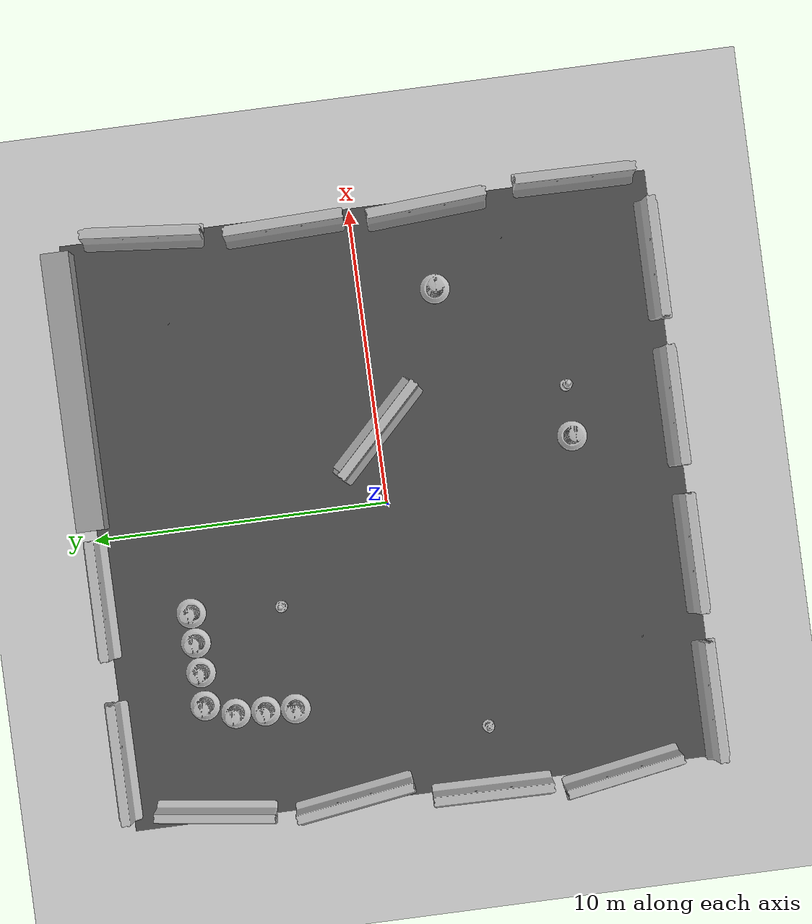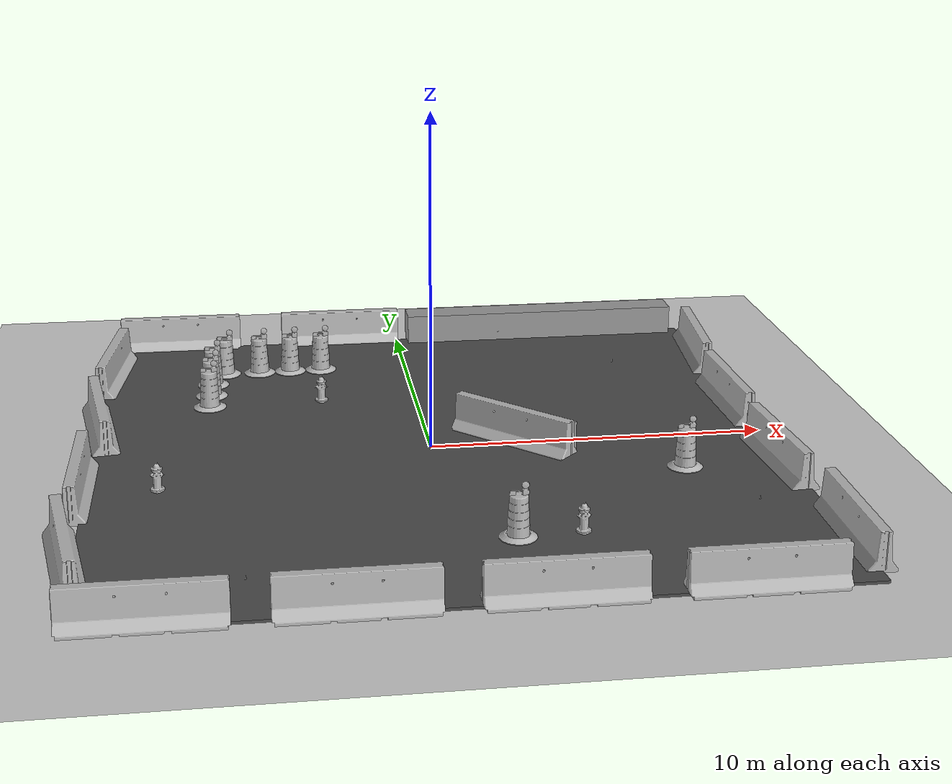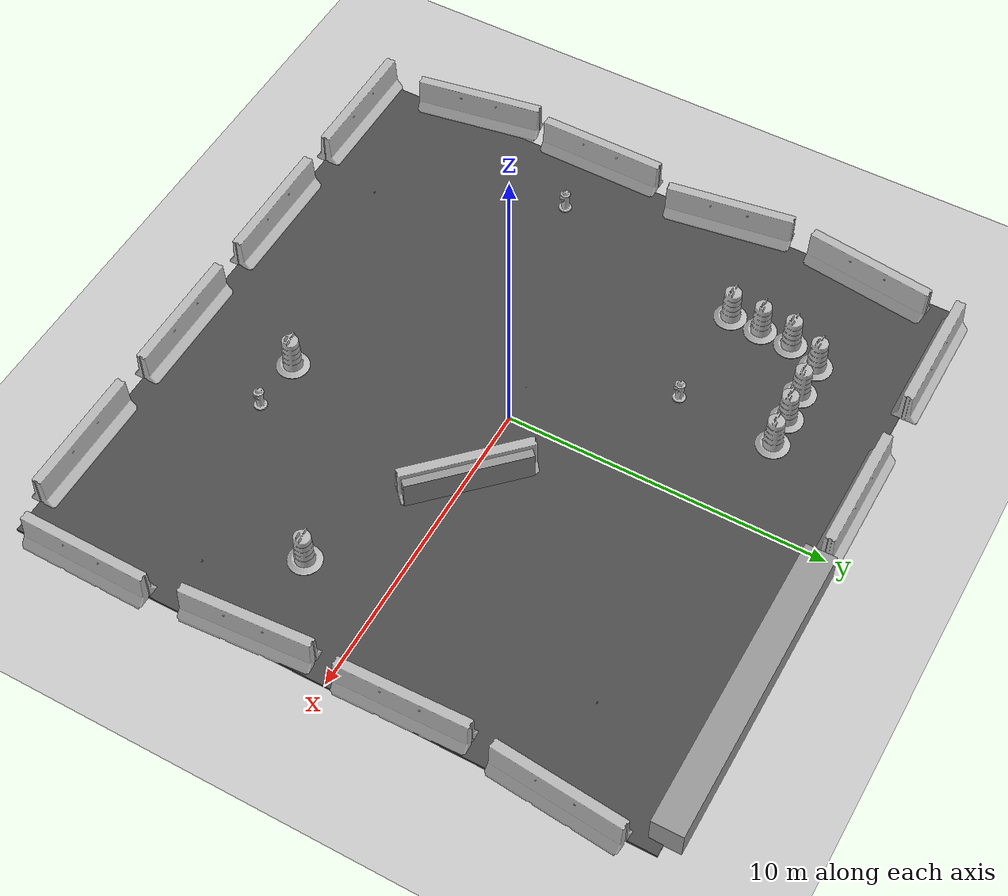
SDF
<sdf version="1.6">
 <world name="default">
  <light name="sun" type="directional">
   <pose>0 0 10 0 -0 0</pose>
   <diffuse>0.8 0.8 0.8 1</diffuse>
   <specular>0.2 0.2 0.2 1</specular>
   <attenuation>
    <range>1000</range>
    <constant>0.9</constant>
    <linear>0.01</linear>
    <quadratic>0.001</quadratic>
   </attenuation>
   <direction>-0.5 0.1 -0.9</direction>
  </light>
  <model name="ground_plane">
   <static>1</static>
   <link name="link">
    <collision name="collision">
     <geometry><plane><normal>0 0 1</normal><size>100 100</size></plane></geometry>
     <surface><friction><ode><mu>100</mu><mu2>50</mu2></ode></friction></surface>
    </collision>
    <visual name="visual">
     <cast_shadows>0</cast_shadows>
     <geometry><plane><normal>0 0 1</normal><size>100 100</size></plane></geometry>
     <material>
      <script><uri>file://media/materials/scripts/gazebo.material</uri><name>Gazebo/Grey</name></script>
     </material>
    </visual>
    <velocity_decay><linear>0</linear><angular>0</angular></velocity_decay>
   </link>
  </model>
  <physics name="default_physics" default="0" type="ode">
   <max_step_size>0.01</max_step_size>
   <real_time_factor>1</real_time_factor>
   <real_time_update_rate>100</real_time_update_rate>
  </physics>
  <scene><ambient>0.4 0.4 0.4 1</ambient><background>0.7 0.7 0.7 1</background><shadows>1</shadows></scene>
  <model name="jersey_barrier">
   <static>1</static>
   <link name="link">
    <visual name="visual">
     <geometry>
      <mesh><uri>model://jersey_barrier/meshes/jersey_barrier.dae</uri><scale>1 1 1</scale></mesh>
     </geometry>
    </visual>
    <collision name="upright">
     <pose>0 0 0.5715 0 -0 0</pose>
     <geometry><box><size>4.06542 0.3063 1.143</size></box></geometry>
    </collision>
    <collision name="base">
     <pose>0 0 0.032258 0 -0 0</pose>
     <geometry><box><size>4.06542 0.8107 0.064516</size></box></geometry>
    </collision>
    <collision name="base2">
     <pose>0 0 0.1 0 -0 0</pose>
     <geometry><box><size>4.06542 0.65 0.1</size></box></geometry>
    </collision>
    <collision name="base3">
     <pose>0 0 0.2 0 -0 0</pose>
     <geometry><box><size>4.06542 0.5 0.1</size></box></geometry>
    </collision>
    <collision name="left-angle">
     <pose>0 -0.224 0.2401 0.9 -0 0</pose>
     <geometry><box><size>4.06542 0.5 0.064516</size></box></geometry>
    </collision>
    <collision name="right-angle">
     <pose>0 0.224 0.2401 -0.9 0 0</pose>
     <geometry><box><size>4.06542 0.5 0.064516</size></box></geometry>
    </collision>
    <velocity_decay><linear>0</linear><angular>0</angular></velocity_decay>
   </link>
   <pose>-8 -10 0 0 -0 0</pose>
  </model>
  <model name="jersey_barrier_0">
   <static>1</static>
   <link name="link">
    <visual name="visual">
     <geometry>
      <mesh><uri>model://jersey_barrier/meshes/jersey_barrier.dae</uri><scale>1 1 1</scale></mesh>
     </geometry>
    </visual>
    <collision name="upright">
     <pose>0 0 0.5715 0 -0 0</pose>
     <geometry><box><size>4.06542 0.3063 1.143</size></box></geometry>
    </collision>
    <collision name="base">
     <pose>0 0 0.032258 0 -0 0</pose>
     <geometry><box><size>4.06542 0.8107 0.064516</size></box></geometry>
    </collision>
    <collision name="base2">
     <pose>0 0 0.1 0 -0 0</pose>
     <geometry><box><size>4.06542 0.65 0.1</size></box></geometry>
    </collision>
    <collision name="base3">
     <pose>0 0 0.2 0 -0 0</pose>
     <geometry><box><size>4.06542 0.5 0.1</size></box></geometry>
    </collision>
    <collision name="left-angle">
     <pose>0 -0.224 0.2401 0.9 -0 0</pose>
     <geometry><box><size>4.06542 0.5 0.064516</size></box></geometry>
    </collision>
    <collision name="right-angle">
     <pose>0 0.224 0.2401 -0.9 0 0</pose>
     <geometry><box><size>4.06542 0.5 0.064516</size></box></geometry>
    </collision>
    <velocity_decay><linear>0</linear><angular>0</angular></velocity_decay>
   </link>
   <pose>-3 -10 0 0 -0 0</pose>
  </model>
  <model name="jersey_barrier_1">
   <static>1</static>
   <link name="link">
    <visual name="visual">
     <geometry>
      <mesh><uri>model://jersey_barrier/meshes/jersey_barrier.dae</uri><scale>1 1 1</scale></mesh>
     </geometry>
    </visual>
    <collision name="upright">
     <pose>0 0 0.5715 0 -0 0</pose>
     <geometry><box><size>4.06542 0.3063 1.143</size></box></geometry>
    </collision>
    <collision name="base">
     <pose>0 0 0.032258 0 -0 0</pose>
     <geometry><box><size>4.06542 0.8107 0.064516</size></box></geometry>
    </collision>
    <collision name="base2">
     <pose>0 0 0.1 0 -0 0</pose>
     <geometry><box><size>4.06542 0.65 0.1</size></box></geometry>
    </collision>
    <collision name="base3">
     <pose>0 0 0.2 0 -0 0</pose>
     <geometry><box><size>4.06542 0.5 0.1</size></box></geometry>
    </collision>
    <collision name="left-angle">
     <pose>0 -0.224 0.2401 0.9 -0 0</pose>
     <geometry><box><size>4.06542 0.5 0.064516</size></box></geometry>
    </collision>
    <collision name="right-angle">
     <pose>0 0.224 0.2401 -0.9 0 0</pose>
     <geometry><box><size>4.06542 0.5 0.064516</size></box></geometry>
    </collision>
    <velocity_decay><linear>0</linear><angular>0</angular></velocity_decay>
   </link>
   <pose>2 -10 0 0 -0 0</pose>
  </model>
  <model name="jersey_barrier_2">
   <static>1</static>
   <link name="link">
    <visual name="visual">
     <geometry>
      <mesh><uri>model://jersey_barrier/meshes/jersey_barrier.dae</uri><scale>1 1 1</scale></mesh>
     </geometry>
    </visual>
    <collision name="upright">
     <pose>0 0 0.5715 0 -0 0</pose>
     <geometry><box><size>4.06542 0.3063 1.143</size></box></geometry>
    </collision>
    <collision name="base">
     <pose>0 0 0.032258 0 -0 0</pose>
     <geometry><box><size>4.06542 0.8107 0.064516</size></box></geometry>
    </collision>
    <collision name="base2">
     <pose>0 0 0.1 0 -0 0</pose>
     <geometry><box><size>4.06542 0.65 0.1</size></box></geometry>
    </collision>
    <collision name="base3">
     <pose>0 0 0.2 0 -0 0</pose>
     <geometry><box><size>4.06542 0.5 0.1</size></box></geometry>
    </collision>
    <collision name="left-angle">
     <pose>0 -0.224 0.2401 0.9 -0 0</pose>
     <geometry><box><size>4.06542 0.5 0.064516</size></box></geometry>
    </collision>
    <collision name="right-angle">
     <pose>0 0.224 0.2401 -0.9 0 0</pose>
     <geometry><box><size>4.06542 0.5 0.064516</size></box></geometry>
    </collision>
    <velocity_decay><linear>0</linear><angular>0</angular></velocity_decay>
   </link>
   <pose>7 -10 0 0 -0 0</pose>
  </model>
  <model name="jersey_barrier_3">
   <static>1</static>
   <link name="link">
    <visual name="visual">
     <geometry>
      <mesh><uri>model://jersey_barrier/meshes/jersey_barrier.dae</uri><scale>1 1 1</scale></mesh>
     </geometry>
    </visual>
    <collision name="upright">
     <pose>0 0 0.5715 0 -0 0</pose>
     <geometry><box><size>4.06542 0.3063 1.143</size></box></geometry>
    </collision>
    <collision name="base">
     <pose>0 0 0.032258 0 -0 0</pose>
     <geometry><box><size>4.06542 0.8107 0.064516</size></box></geometry>
    </collision>
    <collision name="base2">
     <pose>0 0 0.1 0 -0 0</pose>
     <geometry><box><size>4.06542 0.65 0.1</size></box></geometry>
    </collision>
    <collision name="base3">
     <pose>0 0 0.2 0 -0 0</pose>
     <geometry><box><size>4.06542 0.5 0.1</size></box></geometry>
    </collision>
    <collision name="left-angle">
     <pose>0 -0.224 0.2401 0.9 -0 0</pose>
     <geometry><box><size>4.06542 0.5 0.064516</size></box></geometry>
    </collision>
    <collision name="right-angle">
     <pose>0 0.224 0.2401 -0.9 0 0</pose>
     <geometry><box><size>4.06542 0.5 0.064516</size></box></geometry>
    </collision>
    <velocity_decay><linear>0</linear><angular>0</angular></velocity_decay>
   </link>
   <pose>-7.50675 10 0 0 -0 0</pose>
  </model>
  <model name="jersey_barrier_4">
   <static>1</static>
   <link name="link">
    <visual name="visual">
     <geometry>
      <mesh><uri>model://jersey_barrier/meshes/jersey_barrier.dae</uri><scale>1 1 1</scale></mesh>
     </geometry>
    </visual>
    <collision name="upright">
     <pose>0 0 0.5715 0 -0 0</pose>
     <geometry><box><size>4.06542 0.3063 1.143</size></box></geometry>
    </collision>
    <collision name="base">
     <pose>0 0 0.032258 0 -0 0</pose>
     <geometry><box><size>4.06542 0.8107 0.064516</size></box></geometry>
    </collision>
    <collision name="base2">
     <pose>0 0 0.1 0 -0 0</pose>
     <geometry><box><size>4.06542 0.65 0.1</size></box></geometry>
    </collision>
    <collision name="base3">
     <pose>0 0 0.2 0 -0 0</pose>
     <geometry><box><size>4.06542 0.5 0.1</size></box></geometry>
    </collision>
    <collision name="left-angle">
     <pose>0 -0.224 0.2401 0.9 -0 0</pose>
     <geometry><box><size>4.06542 0.5 0.064516</size></box></geometry>
    </collision>
    <collision name="right-angle">
     <pose>0 0.224 0.2401 -0.9 0 0</pose>
     <geometry><box><size>4.06542 0.5 0.064516</size></box></geometry>
    </collision>
    <velocity_decay><linear>0</linear><angular>0</angular></velocity_decay>
   </link>
   <pose>-2 10 0 0 -0 0</pose>
  </model>
  <model name="jersey_barrier_7">
   <static>1</static>
   <link name="link">
    <visual name="visual">
     <geometry>
      <mesh><uri>model://jersey_barrier/meshes/jersey_barrier.dae</uri><scale>1 1 1</scale></mesh>
     </geometry>
    </visual>
    <collision name="upright">
     <pose>0 0 0.5715 0 -0 0</pose>
     <geometry><box><size>4.06542 0.3063 1.143</size></box></geometry>
    </collision>
    <collision name="base">
     <pose>0 0 0.032258 0 -0 0</pose>
     <geometry><box><size>4.06542 0.8107 0.064516</size></box></geometry>
    </collision>
    <collision name="base2">
     <pose>0 0 0.1 0 -0 0</pose>
     <geometry><box><size>4.06542 0.65 0.1</size></box></geometry>
    </collision>
    <collision name="base3">
     <pose>0 0 0.2 0 -0 0</pose>
     <geometry><box><size>4.06542 0.5 0.1</size></box></geometry>
    </collision>
    <collision name="left-angle">
     <pose>0 -0.224 0.2401 0.9 -0 0</pose>
     <geometry><box><size>4.06542 0.5 0.064516</size></box></geometry>
    </collision>
    <collision name="right-angle">
     <pose>0 0.224 0.2401 -0.9 0 0</pose>
     <geometry><box><size>4.06542 0.5 0.064516</size></box></geometry>
    </collision>
    <velocity_decay><linear>0</linear><angular>0</angular></velocity_decay>
   </link>
   <pose>9.74902 -2.57759 0 0 -0 1.64</pose>
  </model>
  <model name="jersey_barrier_8">
   <static>1</static>
   <link name="link">
    <visual name="visual">
     <geometry>
      <mesh><uri>model://jersey_barrier/meshes/jersey_barrier.dae</uri><scale>1 1 1</scale></mesh>
     </geometry>
    </visual>
    <collision name="upright">
     <pose>0 0 0.5715 0 -0 0</pose>
     <geometry><box><size>4.06542 0.3063 1.143</size></box></geometry>
    </collision>
    <collision name="base">
     <pose>0 0 0.032258 0 -0 0</pose>
     <geometry><box><size>4.06542 0.8107 0.064516</size></box></geometry>
    </collision>
    <collision name="base2">
     <pose>0 0 0.1 0 -0 0</pose>
     <geometry><box><size>4.06542 0.65 0.1</size></box></geometry>
    </collision>
    <collision name="base3">
     <pose>0 0 0.2 0 -0 0</pose>
     <geometry><box><size>4.06542 0.5 0.1</size></box></geometry>
    </collision>
    <collision name="left-angle">
     <pose>0 -0.224 0.2401 0.9 -0 0</pose>
     <geometry><box><size>4.06542 0.5 0.064516</size></box></geometry>
    </collision>
    <collision name="right-angle">
     <pose>0 0.224 0.2401 -0.9 0 0</pose>
     <geometry><box><size>4.06542 0.5 0.064516</size></box></geometry>
    </collision>
    <velocity_decay><linear>0</linear><angular>0</angular></velocity_decay>
   </link>
   <pose>9.70141 2.24369 0 0 -0 1.6</pose>
  </model>
  <model name="jersey_barrier_9">
   <static>1</static>
   <link name="link">
    <visual name="visual">
     <geometry>
      <mesh><uri>model://jersey_barrier/meshes/jersey_barrier.dae</uri><scale>1 1 1</scale></mesh>
     </geometry>
    </visual>
    <collision name="upright">
     <pose>0 0 0.5715 0 -0 0</pose>
     <geometry><box><size>4.06542 0.3063 1.143</size></box></geometry>
    </collision>
    <collision name="base">
     <pose>0 0 0.032258 0 -0 0</pose>
     <geometry><box><size>4.06542 0.8107 0.064516</size></box></geometry>
    </collision>
    <collision name="base2">
     <pose>0 0 0.1 0 -0 0</pose>
     <geometry><box><size>4.06542 0.65 0.1</size></box></geometry>
    </collision>
    <collision name="base3">
     <pose>0 0 0.2 0 -0 0</pose>
     <geometry><box><size>4.06542 0.5 0.1</size></box></geometry>
    </collision>
    <collision name="left-angle">
     <pose>0 -0.224 0.2401 0.9 -0 0</pose>
     <geometry><box><size>4.06542 0.5 0.064516</size></box></geometry>
    </collision>
    <collision name="right-angle">
     <pose>0 0.224 0.2401 -0.9 0 0</pose>
     <geometry><box><size>4.06542 0.5 0.064516</size></box></geometry>
    </collision>
    <velocity_decay><linear>0</linear><angular>0</angular></velocity_decay>
   </link>
   <pose>-10.0607 -6.69856 0 0 0 -1.4</pose>
  </model>
  <model name="jersey_barrier_10">
   <static>1</static>
   <link name="link">
    <visual name="visual">
     <geometry>
      <mesh><uri>model://jersey_barrier/meshes/jersey_barrier.dae</uri><scale>1 1 1</scale></mesh>
     </geometry>
    </visual>
    <collision name="upright">
     <pose>0 0 0.5715 0 -0 0</pose>
     <geometry><box><size>4.06542 0.3063 1.143</size></box></geometry>
    </collision>
    <collision name="base">
     <pose>0 0 0.032258 0 -0 0</pose>
     <geometry><box><size>4.06542 0.8107 0.064516</size></box></geometry>
    </collision>
    <collision name="base2">
     <pose>0 0 0.1 0 -0 0</pose>
     <geometry><box><size>4.06542 0.65 0.1</size></box></geometry>
    </collision>
    <collision name="base3">
     <pose>0 0 0.2 0 -0 0</pose>
     <geometry><box><size>4.06542 0.5 0.1</size></box></geometry>
    </collision>
    <collision name="left-angle">
     <pose>0 -0.224 0.2401 0.9 -0 0</pose>
     <geometry><box><size>4.06542 0.5 0.064516</size></box></geometry>
    </collision>
    <collision name="right-angle">
     <pose>0 0.224 0.2401 -0.9 0 0</pose>
     <geometry><box><size>4.06542 0.5 0.064516</size></box></geometry>
    </collision>
    <velocity_decay><linear>0</linear><angular>0</angular></velocity_decay>
   </link>
   <pose>-10.0774 -2.27159 0 0 -0 1.56</pose>
  </model>
  <model name="jersey_barrier_11">
   <static>1</static>
   <link name="link">
    <visual name="visual">
     <geometry>
      <mesh><uri>model://jersey_barrier/meshes/jersey_barrier.dae</uri><scale>1 1 1</scale></mesh>
     </geometry>
    </visual>
    <collision name="upright">
     <pose>0 0 0.5715 0 -0 0</pose>
     <geometry><box><size>4.06542 0.3063 1.143</size></box></geometry>
    </collision>
    <collision name="base">
     <pose>0 0 0.032258 0 -0 0</pose>
     <geometry><box><size>4.06542 0.8107 0.064516</size></box></geometry>
    </collision>
    <collision name="base2">
     <pose>0 0 0.1 0 -0 0</pose>
     <geometry><box><size>4.06542 0.65 0.1</size></box></geometry>
    </collision>
    <collision name="base3">
     <pose>0 0 0.2 0 -0 0</pose>
     <geometry><box><size>4.06542 0.5 0.1</size></box></geometry>
    </collision>
    <collision name="left-angle">
     <pose>0 -0.224 0.2401 0.9 -0 0</pose>
     <geometry><box><size>4.06542 0.5 0.064516</size></box></geometry>
    </collision>
    <collision name="right-angle">
     <pose>0 0.224 0.2401 -0.9 0 0</pose>
     <geometry><box><size>4.06542 0.5 0.064516</size></box></geometry>
    </collision>
    <velocity_decay><linear>0</linear><angular>0</angular></velocity_decay>
   </link>
   <pose>-9.77013 2.34791 0 0 -0 1.72</pose>
  </model>
  <model name="jersey_barrier_12">
   <static>1</static>
   <link name="link">
    <visual name="visual">
     <geometry>
      <mesh><uri>model://jersey_barrier/meshes/jersey_barrier.dae</uri><scale>1 1 1</scale></mesh>
     </geometry>
    </visual>
    <collision name="upright">
     <pose>0 0 0.5715 0 -0 0</pose>
     <geometry><box><size>4.06542 0.3063 1.143</size></box></geometry>
    </collision>
    <collision name="base">
     <pose>0 0 0.032258 0 -0 0</pose>
     <geometry><box><size>4.06542 0.8107 0.064516</size></box></geometry>
    </collision>
    <collision name="base2">
     <pose>0 0 0.1 0 -0 0</pose>
     <geometry><box><size>4.06542 0.65 0.1</size></box></geometry>
    </collision>
    <collision name="base3">
     <pose>0 0 0.2 0 -0 0</pose>
     <geometry><box><size>4.06542 0.5 0.1</size></box></geometry>
    </collision>
    <collision name="left-angle">
     <pose>0 -0.224 0.2401 0.9 -0 0</pose>
     <geometry><box><size>4.06542 0.5 0.064516</size></box></geometry>
    </collision>
    <collision name="right-angle">
     <pose>0 0.224 0.2401 -0.9 0 0</pose>
     <geometry><box><size>4.06542 0.5 0.064516</size></box></geometry>
    </collision>
    <velocity_decay><linear>0</linear><angular>0</angular></velocity_decay>
   </link>
   <pose>10.0879 -7.62159 0 0 -0 1.56</pose>
  </model>
  <model name="jersey_barrier_13">
   <static>1</static>
   <link name="link">
    <visual name="visual">
     <geometry>
      <mesh><uri>model://jersey_barrier/meshes/jersey_barrier.dae</uri><scale>1 1 1</scale></mesh>
     </geometry>
    </visual>
    <collision name="upright">
     <pose>0 0 0.5715 0 -0 0</pose>
     <geometry><box><size>4.06542 0.3063 1.143</size></box></geometry>
    </collision>
    <collision name="base">
     <pose>0 0 0.032258 0 -0 0</pose>
     <geometry><box><size>4.06542 0.8107 0.064516</size></box></geometry>
    </collision>
    <collision name="base2">
     <pose>0 0 0.1 0 -0 0</pose>
     <geometry><box><size>4.06542 0.65 0.1</size></box></geometry>
    </collision>
    <collision name="base3">
     <pose>0 0 0.2 0 -0 0</pose>
     <geometry><box><size>4.06542 0.5 0.1</size></box></geometry>
    </collision>
    <collision name="left-angle">
     <pose>0 -0.224 0.2401 0.9 -0 0</pose>
     <geometry><box><size>4.06542 0.5 0.064516</size></box></geometry>
    </collision>
    <collision name="right-angle">
     <pose>0 0.224 0.2401 -0.9 0 0</pose>
     <geometry><box><size>4.06542 0.5 0.064516</size></box></geometry>
    </collision>
    <velocity_decay><linear>0</linear><angular>0</angular></velocity_decay>
   </link>
   <pose>10 7 0 0 -0 1.48</pose>
  </model>
  <model name="jersey_barrier_14">
   <static>1</static>
   <link name="link">
    <visual name="visual">
     <geometry>
      <mesh><uri>model://jersey_barrier/meshes/jersey_barrier.dae</uri><scale>1 1 1</scale></mesh>
     </geometry>
    </visual>
    <collision name="upright">
     <pose>0 0 0.5715 0 -0 0</pose>
     <geometry><box><size>4.06542 0.3063 1.143</size></box></geometry>
    </collision>
    <collision name="base">
     <pose>0 0 0.032258 0 -0 0</pose>
     <geometry><box><size>4.06542 0.8107 0.064516</size></box></geometry>
    </collision>
    <collision name="base2">
     <pose>0 0 0.1 0 -0 0</pose>
     <geometry><box><size>4.06542 0.65 0.1</size></box></geometry>
    </collision>
    <collision name="base3">
     <pose>0 0 0.2 0 -0 0</pose>
     <geometry><box><size>4.06542 0.5 0.1</size></box></geometry>
    </collision>
    <collision name="left-angle">
     <pose>0 -0.224 0.2401 0.9 -0 0</pose>
     <geometry><box><size>4.06542 0.5 0.064516</size></box></geometry>
    </collision>
    <collision name="right-angle">
     <pose>0 0.224 0.2401 -0.9 0 0</pose>
     <geometry><box><size>4.06542 0.5 0.064516</size></box></geometry>
    </collision>
    <velocity_decay><linear>0</linear><angular>0</angular></velocity_decay>
   </link>
   <pose>-9.64482 7.05946 0 0 -0 1.44</pose>
  </model>
  <model name="fire_hydrant">
   <static>1</static>
   <link name="link">
    <collision name="collision">
     <geometry><mesh><uri>model://fire_hydrant/meshes/fire_hydrant.dae</uri><scale>1 1 1</scale></mesh></geometry>
    </collision>
    <visual name="visual">
     <geometry><mesh><uri>model://fire_hydrant/meshes/fire_hydrant.dae</uri><scale>1 1 1</scale></mesh></geometry>
    </visual>
    <velocity_decay><linear>0</linear><angular>0</angular></velocity_decay>
   </link>
   <pose>3.18024 -6.51118 0 0 -0 0</pose>
  </model>
  <model name="fire_hydrant_0">
   <static>1</static>
   <link name="link">
    <collision name="collision">
     <geometry><mesh><uri>model://fire_hydrant/meshes/fire_hydrant.dae</uri><scale>1 1 1</scale></mesh></geometry>
    </collision>
    <visual name="visual">
     <geometry><mesh><uri>model://fire_hydrant/meshes/fire_hydrant.dae</uri><scale>1 1 1</scale></mesh></geometry>
    </visual>
    <velocity_decay><linear>0</linear><angular>0</angular></velocity_decay>
   </link>
   <pose>-3 4 0 0 -0 0</pose>
  </model>
  <model name="fire_hydrant_1">
   <static>1</static>
   <link name="link">
    <collision name="collision">
     <geometry><mesh><uri>model://fire_hydrant/meshes/fire_hydrant.dae</uri><scale>1 1 1</scale></mesh></geometry>
    </collision>
    <visual name="visual">
     <geometry><mesh><uri>model://fire_hydrant/meshes/fire_hydrant.dae</uri><scale>1 1 1</scale></mesh></geometry>
    </visual>
    <velocity_decay><linear>0</linear><angular>0</angular></velocity_decay>
   </link>
   <pose>-7.90686 -2.41363 0 0 -0 0</pose>
  </model>
  <model name="jersey_barrier_15">
   <static>1</static>
   <link name="link">
    <visual name="visual">
     <geometry>
      <mesh><uri>model://jersey_barrier/meshes/jersey_barrier.dae</uri><scale>1 1 1</scale></mesh>
     </geometry>
    </visual>
    <collision name="upright">
     <pose>0 0 0.5715 0 -0 0</pose>
     <geometry><box><size>4.06542 0.3063 1.143</size></box></geometry>
    </collision>
    <collision name="base">
     <pose>0 0 0.032258 0 -0 0</pose>
     <geometry><box><size>4.06542 0.8107 0.064516</size></box></geometry>
    </collision>
    <collision name="base2">
     <pose>0 0 0.1 0 -0 0</pose>
     <geometry><box><size>4.06542 0.65 0.1</size></box></geometry>
    </collision>
    <collision name="base3">
     <pose>0 0 0.2 0 -0 0</pose>
     <geometry><box><size>4.06542 0.5 0.1</size></box></geometry>
    </collision>
    <collision name="left-angle">
     <pose>0 -0.224 0.2401 0.9 -0 0</pose>
     <geometry><box><size>4.06542 0.5 0.064516</size></box></geometry>
    </collision>
    <collision name="right-angle">
     <pose>0 0.224 0.2401 -0.9 0 0</pose>
     <geometry><box><size>4.06542 0.5 0.064516</size></box></geometry>
    </collision>
    <velocity_decay><linear>0</linear><angular>0</angular></velocity_decay>
   </link>
   <pose>2.45495 0 0 0 -0 2.36</pose>
  </model>
  <model name="Construction Cone">
   <link name="link">
    <collision name="collision">
     <geometry>
      <mesh><scale>1 1 1</scale><uri>model://construction_cone/meshes/construction_cone.dae</uri></mesh>
     </geometry>
    </collision>
    <visual name="visual">
     <geometry>
      <mesh><scale>1 1 1</scale><uri>model://construction_cone/meshes/construction_cone.dae</uri></mesh>
     </geometry>
    </visual>
    <velocity_decay><linear>0</linear><angular>0</angular></velocity_decay>
    <inertial>
     <inertia><ixx>1</ixx><ixy>0</ixy><ixz>0</ixz><iyy>1</iyy><iyz>0</iyz><izz>1</izz></inertia>
     <mass>1</mass>
    </inertial>
   </link>
   <pose>-5.59121 -8 0.049102 3e-06 -1e-05 2e-06</pose>
   <static>0</static>
  </model>
  <model name="Construction Barrel">
   <link name="link">
    <inertial>
     <pose>0 0 0.4 0 -0 0</pose>
     <mass>500</mass>
     <inertia><ixx>51.2096</ixx><iyy>51.2096</iyy><izz>25</izz><ixy>0</ixy><ixz>0</ixz><iyz>0</iyz></inertia>
    </inertial>
    <collision name="collision">
     <geometry>
      <mesh><uri>model://construction_barrel/meshes/construction_barrel.dae</uri><scale>1 1 1</scale></mesh>
     </geometry>
    </collision>
    <visual name="visual">
     <geometry>
      <mesh><uri>model://construction_barrel/meshes/construction_barrel.dae</uri><scale>1 1 1</scale></mesh>
     </geometry>
    </visual>
    <velocity_decay><linear>0</linear><angular>0</angular></velocity_decay>
   </link>
   <pose>7.00007 -2.5463 0.049903 -0.000191 -0.000372 0.000336</pose>
   <static>0</static>
  </model>
  <model name="Construction Cone_0">
   <link name="link">
    <collision name="collision">
     <geometry>
      <mesh><scale>1 1 1</scale><uri>model://construction_cone/meshes/construction_cone.dae</uri></mesh>
     </geometry>
    </collision>
    <visual name="visual">
     <geometry>
      <mesh><scale>1 1 1</scale><uri>model://construction_cone/meshes/construction_cone.dae</uri></mesh>
     </geometry>
    </visual>
    <velocity_decay><linear>0</linear><angular>0</angular></velocity_decay>
    <inertial>
     <inertia><ixx>1</ixx><ixy>0</ixy><ixz>0</ixz><iyy>1</iyy><iyz>0</iyz><izz>1</izz></inertia>
     <mass>1</mass>
    </inertial>
   </link>
   <pose>6.99685 6.55732 0.049102 3e-06 -1e-05 -0.00701</pose>
   <static>0</static>
  </model>
  <model name="Construction Barrel_0">
   <link name="link">
    <inertial>
     <pose>0 0 0.4 0 -0 0</pose>
     <mass>500</mass>
     <inertia><ixx>51.2096</ixx><iyy>51.2096</iyy><izz>25</izz><ixy>0</ixy><ixz>0</ixz><iyz>0</iyz></inertia>
    </inertial>
    <collision name="collision">
     <geometry>
      <mesh><uri>model://construction_barrel/meshes/construction_barrel.dae</uri><scale>1 1 1</scale></mesh>
     </geometry>
    </collision>
    <visual name="visual">
     <geometry>
      <mesh><uri>model://construction_barrel/meshes/construction_barrel.dae</uri><scale>1 1 1</scale></mesh>
     </geometry>
    </visual>
    <velocity_decay><linear>0</linear><angular>0</angular></velocity_decay>
   </link>
   <pose>1.45179 -6.51123 0.049884 0.00047 -9e-06 -2.7e-05</pose>
   <static>0</static>
  </model>
  <model name="asphalt_plane">
   <static>1</static>
   <link name="link">
    <collision name="collision"><geometry><box><size>20 20 0.1</size></box></geometry></collision>
    <visual name="visual">
     <cast_shadows>0</cast_shadows>
     <geometry><box><size>20 20 0.1</size></box></geometry>
     <material>
      <script>
       <uri>model://asphalt_plane/materials/scripts</uri>
       <uri>model://asphalt_plane/materials/textures</uri>
       <name>vrc/asphalt</name>
      </script>
     </material>
    </visual>
    <velocity_decay><linear>0</linear><angular>0</angular></velocity_decay>
   </link>
   <pose>0.076733 -0.110379 0 0 -0 0</pose>
  </model>
  <model name="Construction Barrel_1">
   <link name="link">
    <inertial>
     <pose>0 0 0.4 0 -0 0</pose>
     <mass>500</mass>
     <inertia><ixx>51.2096</ixx><iyy>51.2096</iyy><izz>25</izz><ixy>0</ixy><ixz>0</ixz><iyz>0</iyz></inertia>
    </inertial>
    <collision name="collision">
     <geometry>
      <mesh><uri>model://construction_barrel/meshes/construction_barrel.dae</uri><scale>1 1 1</scale></mesh>
     </geometry>
    </collision>
    <visual name="visual">
     <geometry>
      <mesh><uri>model://construction_barrel/meshes/construction_barrel.dae</uri><scale>1 1 1</scale></mesh>
     </geometry>
    </visual>
    <velocity_decay><linear>0</linear><angular>0</angular></velocity_decay>
   </link>
   <pose>-6.50472 3.98271 0.049905 -8.7e-05 -0.000396 -0.009574</pose>
   <static>0</static>
  </model>
  <model name="Construction Barrel_2">
   <link name="link">
    <inertial>
     <pose>0 0 0.4 0 -0 0</pose>
     <mass>500</mass>
     <inertia><ixx>51.2096</ixx><iyy>51.2096</iyy><izz>25</izz><ixy>0</ixy><ixz>0</ixz><iyz>0</iyz></inertia>
    </inertial>
    <collision name="collision">
     <geometry>
      <mesh><uri>model://construction_barrel/meshes/construction_barrel.dae</uri><scale>1 1 1</scale></mesh>
     </geometry>
    </collision>
    <visual name="visual">
     <geometry>
      <mesh><uri>model://construction_barrel/meshes/construction_barrel.dae</uri><scale>1 1 1</scale></mesh>
     </geometry>
    </visual>
    <velocity_decay><linear>0</linear><angular>0</angular></velocity_decay>
   </link>
   <pose>-6.45063 4.99644 0.049919 0.000369 -2.9e-05 0.064931</pose>
   <static>0</static>
  </model>
  <model name="Construction Barrel_3">
   <link name="link">
    <inertial>
     <pose>0 0 0.4 0 -0 0</pose>
     <mass>500</mass>
     <inertia><ixx>51.2096</ixx><iyy>51.2096</iyy><izz>25</izz><ixy>0</ixy><ixz>0</ixz><iyz>0</iyz></inertia>
    </inertial>
    <collision name="collision">
     <geometry>
      <mesh><uri>model://construction_barrel/meshes/construction_barrel.dae</uri><scale>1 1 1</scale></mesh>
     </geometry>
    </collision>
    <visual name="visual">
     <geometry>
      <mesh><uri>model://construction_barrel/meshes/construction_barrel.dae</uri><scale>1 1 1</scale></mesh>
     </geometry>
    </visual>
    <velocity_decay><linear>0</linear><angular>0</angular></velocity_decay>
   </link>
   <pose>-6.40171 6.01116 0.049928 0.000333 5.6e-05 -0.120739</pose>
   <static>0</static>
  </model>
  <model name="Construction Barrel_4">
   <link name="link">
    <inertial>
     <pose>0 0 0.4 0 -0 0</pose>
     <mass>500</mass>
     <inertia><ixx>51.2096</ixx><iyy>51.2096</iyy><izz>25</izz><ixy>0</ixy><ixz>0</ixz><iyz>0</iyz></inertia>
    </inertial>
    <collision name="collision">
     <geometry>
      <mesh><uri>model://construction_barrel/meshes/construction_barrel.dae</uri><scale>1 1 1</scale></mesh>
     </geometry>
    </collision>
    <visual name="visual">
     <geometry>
      <mesh><uri>model://construction_barrel/meshes/construction_barrel.dae</uri><scale>1 1 1</scale></mesh>
     </geometry>
    </visual>
    <velocity_decay><linear>0</linear><angular>0</angular></velocity_decay>
   </link>
   <pose>-6.00626 7.0089 0.049899 -9.7e-05 -0.000411 -0.049542</pose>
   <static>0</static>
  </model>
  <model name="Construction Barrel_5">
   <link name="link">
    <inertial>
     <pose>0 0 0.4 0 -0 0</pose>
     <mass>500</mass>
     <inertia><ixx>51.2096</ixx><iyy>51.2096</iyy><izz>25</izz><ixy>0</ixy><ixz>0</ixz><iyz>0</iyz></inertia>
    </inertial>
    <collision name="collision">
     <geometry>
      <mesh><uri>model://construction_barrel/meshes/construction_barrel.dae</uri><scale>1 1 1</scale></mesh>
     </geometry>
    </collision>
    <visual name="visual">
     <geometry>
      <mesh><uri>model://construction_barrel/meshes/construction_barrel.dae</uri><scale>1 1 1</scale></mesh>
     </geometry>
    </visual>
    <velocity_decay><linear>0</linear><angular>0</angular></velocity_decay>
   </link>
   <pose>-4.87567 7.00818 0.049919 -0.000158 -0.000331 0.146149</pose>
   <static>0</static>
  </model>
  <model name="Construction Barrel_6">
   <link name="link">
    <inertial>
     <pose>0 0 0.4 0 -0 0</pose>
     <mass>500</mass>
     <inertia><ixx>51.2096</ixx><iyy>51.2096</iyy><izz>25</izz><ixy>0</ixy><ixz>0</ixz><iyz>0</iyz></inertia>
    </inertial>
    <collision name="collision">
     <geometry>
      <mesh><uri>model://construction_barrel/meshes/construction_barrel.dae</uri><scale>1 1 1</scale></mesh>
     </geometry>
    </collision>
    <visual name="visual">
     <geometry>
      <mesh><uri>model://construction_barrel/meshes/construction_barrel.dae</uri><scale>1 1 1</scale></mesh>
     </geometry>
    </visual>
    <velocity_decay><linear>0</linear><angular>0</angular></velocity_decay>
   </link>
   <pose>-3.86067 7.04838 0.049884 0.000469 -9e-06 0.032633</pose>
   <static>0</static>
  </model>
  <model name="Construction Barrel_7">
   <link name="link">
    <inertial>
     <pose>0 0 0.4 0 -0 0</pose>
     <mass>500</mass>
     <inertia><ixx>51.2096</ixx><iyy>51.2096</iyy><izz>25</izz><ixy>0</ixy><ixz>0</ixz><iyz>0</iyz></inertia>
    </inertial>
    <collision name="collision">
     <geometry>
      <mesh><uri>model://construction_barrel/meshes/construction_barrel.dae</uri><scale>1 1 1</scale></mesh>
     </geometry>
    </collision>
    <visual name="visual">
     <geometry>
      <mesh><uri>model://construction_barrel/meshes/construction_barrel.dae</uri><scale>1 1 1</scale></mesh>
     </geometry>
    </visual>
    <velocity_decay><linear>0</linear><angular>0</angular></velocity_decay>
   </link>
   <pose>-2.84387 7.07542 0.049907 0.000391 8.5e-05 0.070593</pose>
   <static>0</static>
  </model>
  <model name="Construction Cone_1">
   <link name="link">
    <collision name="collision">
     <geometry>
      <mesh><scale>1 1 1</scale><uri>model://construction_cone/meshes/construction_cone.dae</uri></mesh>
     </geometry>
    </collision>
    <visual name="visual">
     <geometry>
      <mesh><scale>1 1 1</scale><uri>model://construction_cone/meshes/construction_cone.dae</uri></mesh>
     </geometry>
    </visual>
    <velocity_decay><linear>0</linear><angular>0</angular></velocity_decay>
    <inertial>
     <inertia><ixx>1</ixx><ixy>0</ixy><ixz>0</ixz><iyy>1</iyy><iyz>0</iyz><izz>1</izz></inertia>
     <mass>1</mass>
    </inertial>
   </link>
   <pose>8.42887 -5 0.049102 3e-06 -1e-05 1e-06</pose>
   <static>0</static>
  </model>
  <gravity>0 0 -9.8</gravity>
  <magnetic_field>6e-06 2.3e-05 -4.2e-05</magnetic_field>
  <atmosphere type="adiabatic"/>
  <spherical_coordinates>
   <surface_model>EARTH_WGS84</surface_model>
   <latitude_deg>0</latitude_deg>
   <longitude_deg>0</longitude_deg>
   <elevation>0</elevation>
   <heading_deg>0</heading_deg>
  </spherical_coordinates>
  <model name="35mm_Apriltag36_11_00000_0">
   <link name="main">
    <inertial>
     <mass>1</mass>
     <inertia><ixx>1</ixx><ixy>0</ixy><ixz>0</ixz><iyy>1</iyy><iyz>0</iyz><izz>1</izz></inertia>
    </inertial>
    <visual name="main_Visual">
     <geometry><box><size>0.035 0.035 0.0001</size></box></geometry>
     <material>
      <script>
       <uri>model://Apriltag36_11_00000/materials/scripts</uri>
       <uri>model://Apriltag36_11_00000/materials/textures</uri>
       <name>Apriltag36_11_00000</name>
      </script>
      <ambient>1 1 1 1</ambient>
      <diffuse>1 1 1 1</diffuse>
      <specular>0 0 0 1</specular>
      <emissive>0 0 0 1</emissive>
      <shader type="vertex"><normal_map>__default__</normal_map></shader>
     </material>
    </visual>
   </link>
   <static>1</static>
   <pose>-1 0 0.335 3.14159 1.57079 3.14159</pose>
  </model>
  <model name="35mm_Apriltag36_11_00000_0_1">
   <link name="main">
    <inertial>
     <mass>1</mass>
     <inertia><ixx>1</ixx><ixy>0</ixy><ixz>0</ixz><iyy>1</iyy><iyz>0</iyz><izz>1</izz></inertia>
    </inertial>
    <visual name="main_Visual">
     <geometry><box><size>0.035 0.035 0.0001</size></box></geometry>
     <material>
      <script>
       <uri>model://Apriltag36_11_00000/materials/scripts</uri>
       <uri>model://Apriltag36_11_00000/materials/textures</uri>
       <name>Apriltag36_11_00000</name>
      </script>
      <ambient>1 1 1 1</ambient>
      <diffuse>1 1 1 1</diffuse>
      <specular>0 0 0 1</specular>
      <emissive>0 0 0 1</emissive>
      <shader type="vertex"><normal_map>__default__</normal_map></shader>
     </material>
    </visual>
   </link>
   <static>1</static>
   <pose>3.55346 9.44909 0.334998 -1.57079 1.57079 3.14159</pose>
  </model>
  <model name="unit_box_0_2">
   <pose>2.6799 0.181917 0.5 0 -0 0.786024</pose>
   <link name="link">
    <inertial>
     <mass>1</mass>
     <inertia>
      <ixx>0.166667</ixx>
      <ixy>0</ixy>
      <ixz>0</ixz>
      <iyy>0.166667</iyy>
      <iyz>0</iyz>
      <izz>0.166667</izz>
     </inertia>
    </inertial>
    <collision name="collision"><geometry><box><size>0.280328 3.82575 1</size></box></geometry></collision>
    <visual name="visual">
     <geometry><box><size>0.280328 3.82575 1</size></box></geometry>
     <material>
      <script><name>Gazebo/Grey</name><uri>file://media/materials/scripts/gazebo.material</uri></script>
     </material>
    </visual>
   </link>
  </model>
  <model name="35mm_Apriltag36_11_00000_0_2">
   <link name="main">
    <inertial>
     <mass>1</mass>
     <inertia><ixx>1</ixx><ixy>0</ixy><ixz>0</ixz><iyy>1</iyy><iyz>0</iyz><izz>1</izz></inertia>
    </inertial>
    <visual name="main_Visual">
     <geometry><box><size>0.035 0.035 0.0001</size></box></geometry>
     <material>
      <script>
       <uri>model://Apriltag36_11_00000/materials/scripts</uri>
       <uri>model://Apriltag36_11_00000/materials/textures</uri>
       <name>Apriltag36_11_00000</name>
      </script>
      <ambient>1 1 1 1</ambient>
      <diffuse>1 1 1 1</diffuse>
      <specular>0 0 0 1</specular>
      <emissive>0 0 0 1</emissive>
      <shader type="vertex"><normal_map>__default__</normal_map></shader>
     </material>
    </visual>
   </link>
   <static>1</static>
   <pose>3.0019 0.059844 0.335 2.28514 1.57079 3.07075</pose>
  </model>
  <model name="unit_box_0_3">
   <pose>5.04936 9.92241 0.5 0 -0 0</pose>
   <link name="link">
    <inertial>
     <mass>1</mass>
     <inertia>
      <ixx>0.166667</ixx>
      <ixy>0</ixy>
      <ixz>0</ixz>
      <iyy>0.166667</iyy>
      <iyz>0</iyz>
      <izz>0.166667</izz>
     </inertia>
    </inertial>
    <collision name="collision"><geometry><box><size>9.36405 0.945749 1</size></box></geometry></collision>
    <visual name="visual">
     <geometry><box><size>9.36405 0.945749 1</size></box></geometry>
     <material>
      <script><name>Gazebo/Grey</name><uri>file://media/materials/scripts/gazebo.material</uri></script>
     </material>
    </visual>
   </link>
  </model>
 </world>
</sdf>
